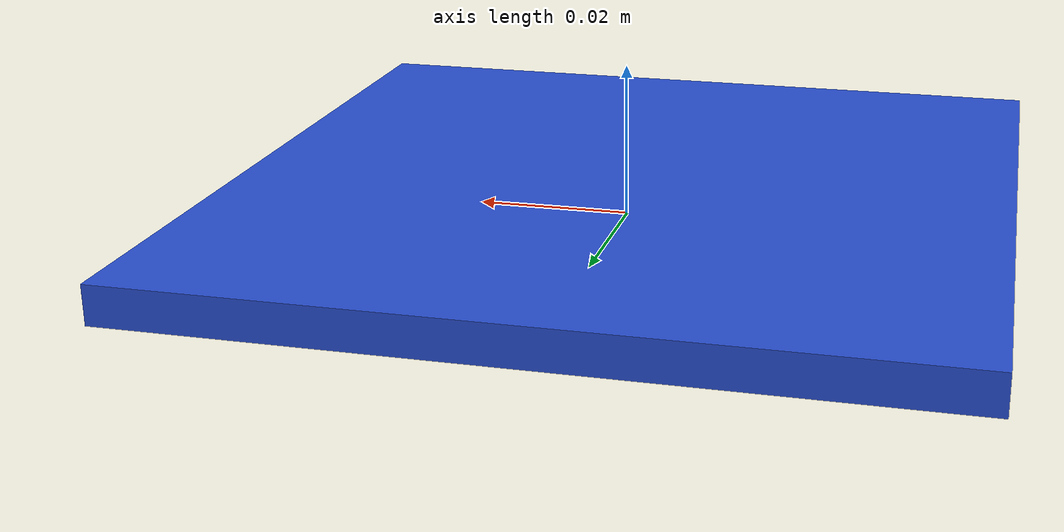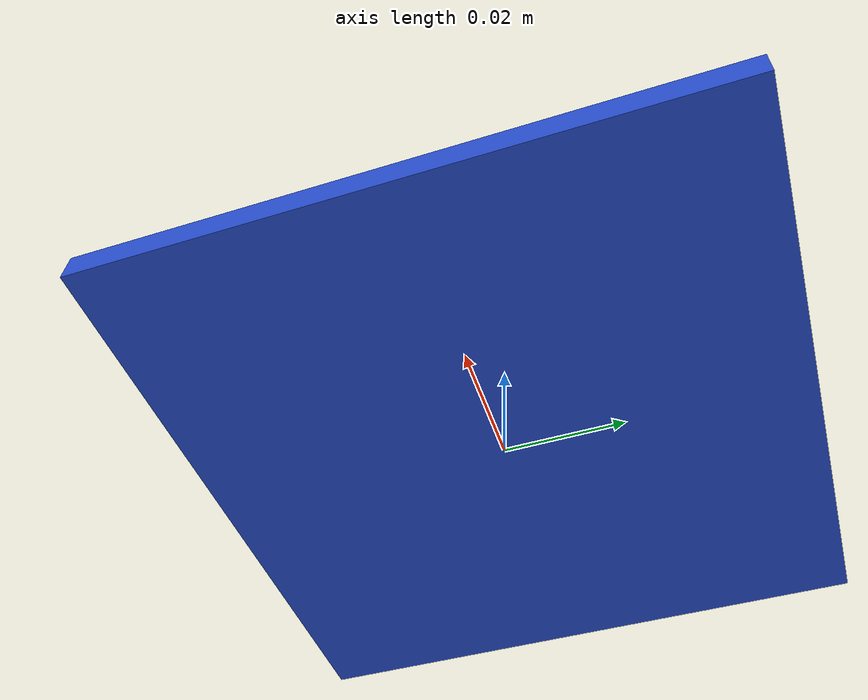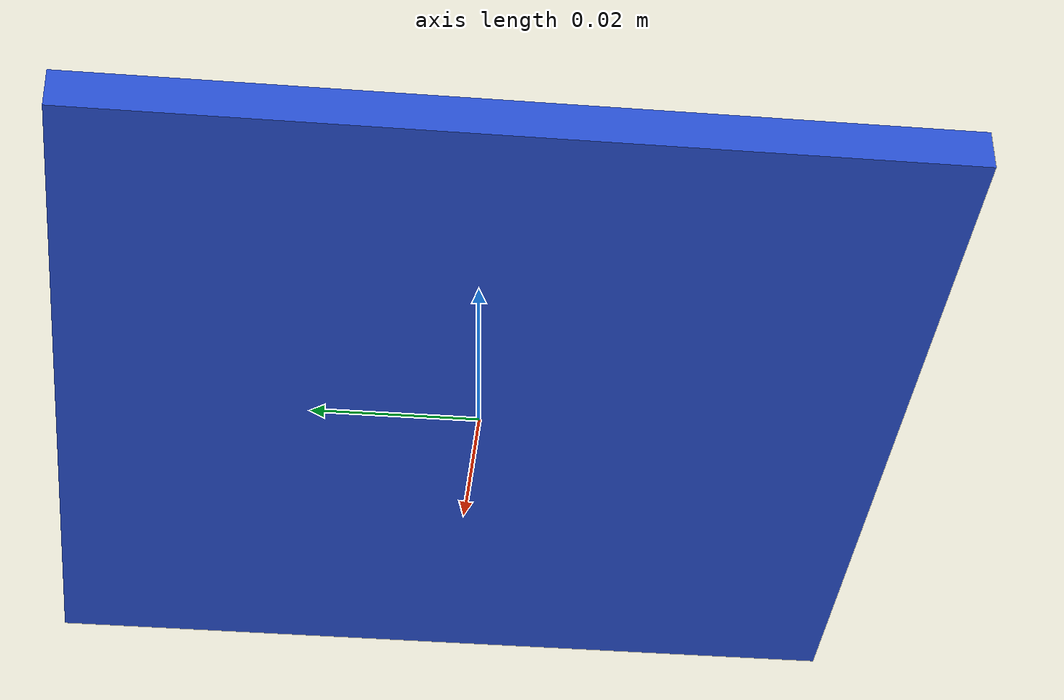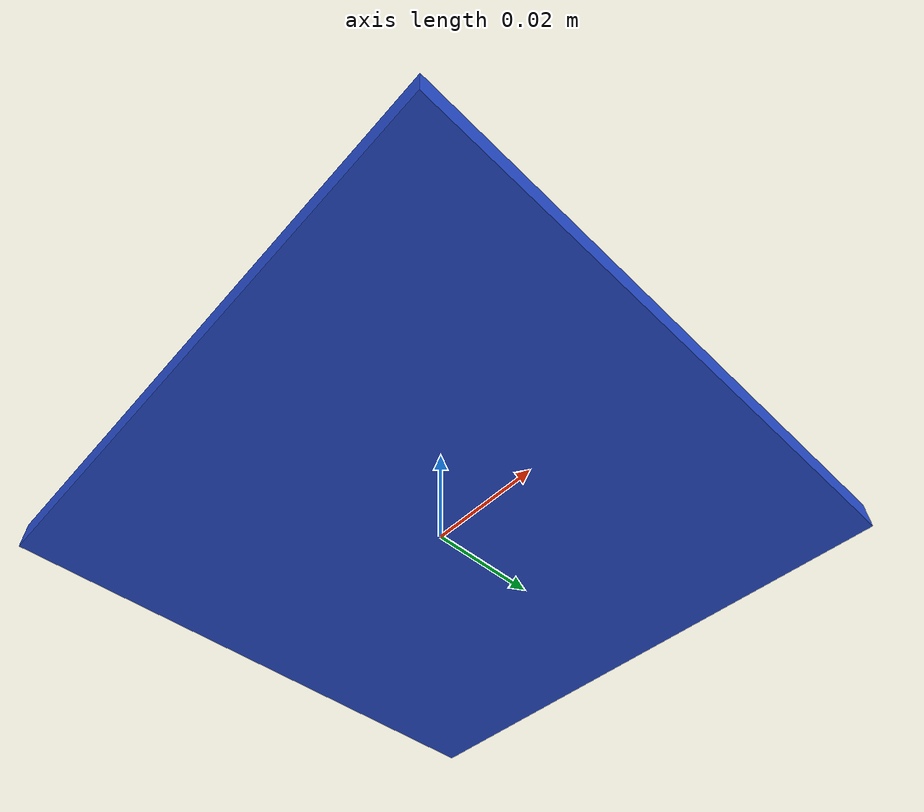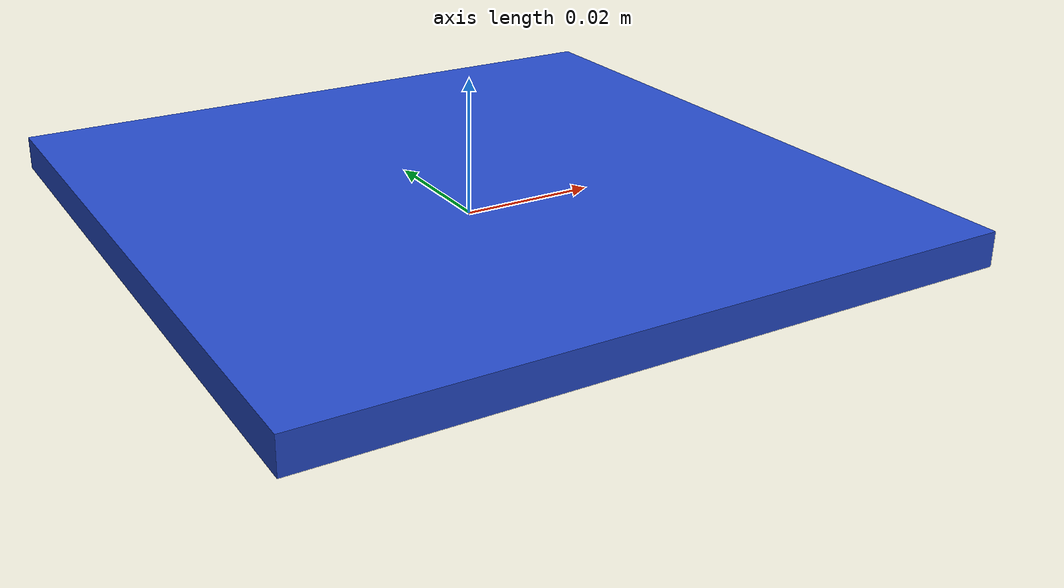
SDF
<?xml version='1.0'?>
<sdf version='1.5'>
  <model name='ground_tour'>
    <link name='link'>
      <pose>0 0 0.0375 0 -0 0</pose>
      <inertial>
        <mass>0.1467</mass>
        <inertia>
          <ixx>8.252e-05</ixx>
          <ixy>0</ixy>
          <ixz>0</ixz>
          <iyy>8.252e-05</iyy>
          <iyz>0</iyz>
          <izz>8.252e-05</izz>
        </inertia>
        <pose>0 0 0 0 -0 0</pose>
      </inertial>
      <self_collide>0</self_collide>
      <kinematic>0</kinematic>
      <velocity_decay>
        <linear>0</linear>
        <angular>0.005</angular>
      </velocity_decay>
      <gravity>1</gravity>
      <visual name='visual'>
        <geometry>
          <box>
            <size>0.1 0.1 0.005</size>
          </box>
        </geometry>
        <material>
          <script>
            <uri>file://media/materials/scripts/gazebo.material</uri>
            <name>Gazebo/Blue</name>
          </script>
          <shader type='pixel'>
            <normal_map>__default__</normal_map>
          </shader>
          <ambient>0 0.1 0.9 1</ambient>
          <diffuse>0 0.5 0.5 1</diffuse>
          <specular>0 0 0 1</specular>
          <emissive>0 0 0 1</emissive>
        </material>
        <pose>0 0 -0.035 0 -0 0</pose>
        <cast_shadows>1</cast_shadows>
        <transparency>0</transparency>
      </visual>
      <collision name='collision'>
        <laser_retro>0</laser_retro>
        <max_contacts>10</max_contacts>
        <pose>0 0 -0.035 0 -0 0</pose>
        <geometry>
          <box>
            <size>0.1 0.1 0.005</size>
          </box>
        </geometry>
        <surface>
          <friction>
            <ode>
              <mu>1</mu>
              <mu2>1</mu2>
              <fdir1>0 0 0</fdir1>
              <slip1>0</slip1>
              <slip2>0</slip2>
            </ode>
            <torsional>
              <coefficient>1</coefficient>
              <patch_radius>0</patch_radius>
              <surface_radius>0</surface_radius>
              <use_patch_radius>1</use_patch_radius>
              <ode>
                <slip>0</slip>
              </ode>
            </torsional>
          </friction>
          <bounce>
            <restitution_coefficient>0</restitution_coefficient>
            <threshold>1e+06</threshold>
          </bounce>
          <contact>
            <collide_without_contact>0</collide_without_contact>
            <collide_without_contact_bitmask>1</collide_without_contact_bitmask>
            <collide_bitmask>1</collide_bitmask>
            <ode>
              <soft_cfm>0</soft_cfm>
              <soft_erp>0.2</soft_erp>
              <kp>1e+13</kp>
              <kd>1</kd>
              <max_vel>0.01</max_vel>
              <min_depth>0</min_depth>
            </ode>
            <bullet>
              <split_impulse>1</split_impulse>
              <split_impulse_penetration_threshold>-0.01</split_impulse_penetration_threshold>
              <soft_cfm>0</soft_cfm>
              <soft_erp>0.2</soft_erp>
              <kp>1e+13</kp>
              <kd>1</kd>
            </bullet>
          </contact>
        </surface>
      </collision>
    </link>
    <static>0</static>
    <allow_auto_disable>1</allow_auto_disable>
  </model>
</sdf>
